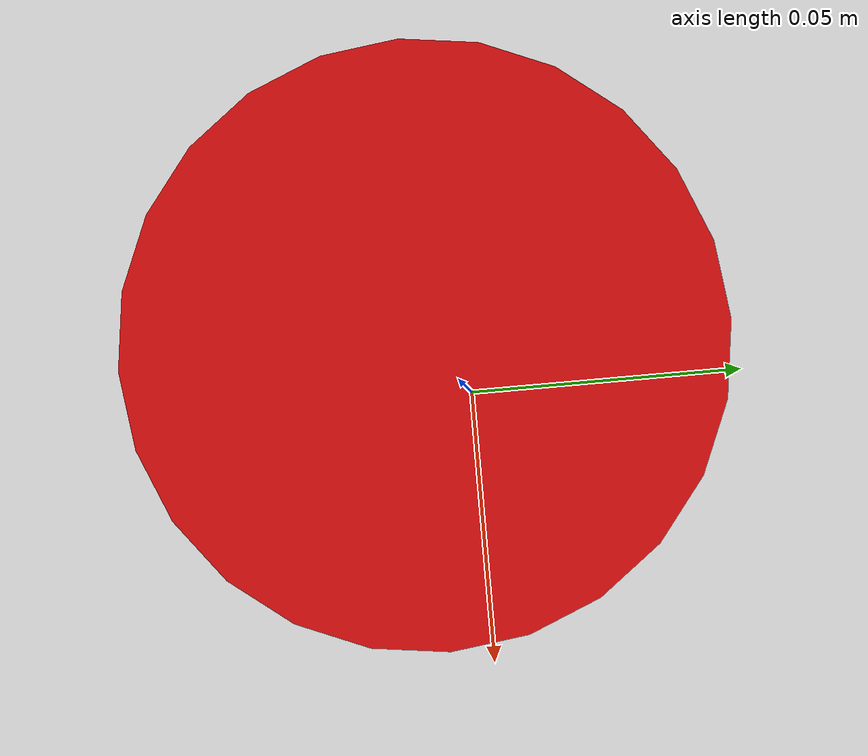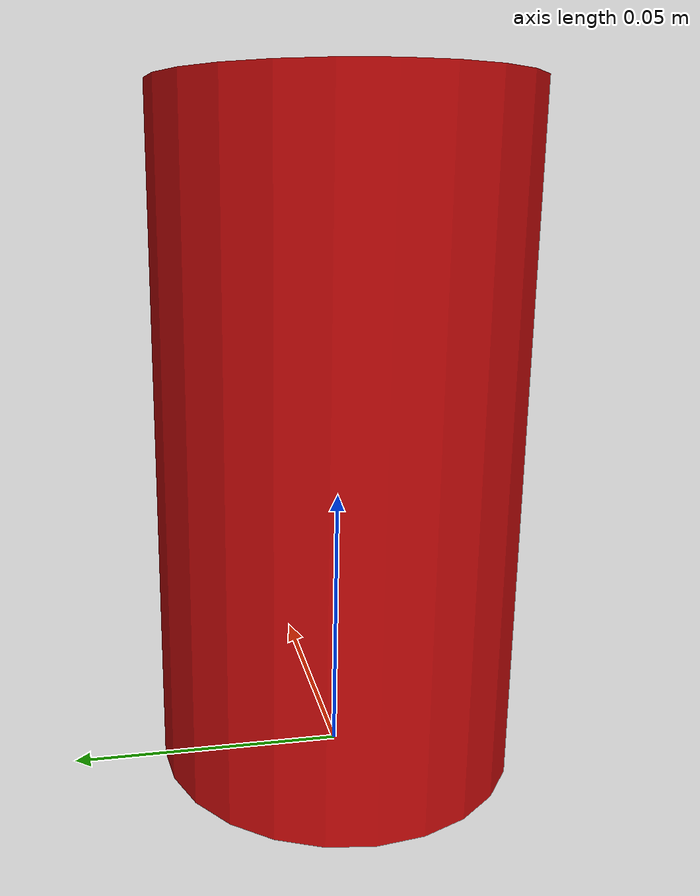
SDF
<?xml version="1.0" encoding="UTF-8"?>
<sdf version="1.9">
  <model name="red_can">
    <static>true</static>
    <link name="link">
      <pose>0 0 0.061 0 0 0</pose>
      <collision name="collision">
        <geometry>
          <cylinder>
            <radius>0.033</radius>
            <length>0.122</length>
          </cylinder>
        </geometry>
      </collision>
      <visual name="visual">
        <geometry>
          <cylinder>
            <radius>0.033</radius>
            <length>0.122</length>
          </cylinder>
        </geometry>
        <material>
          <!-- Saturated red — chosen to be a clean target for both the
               YOLO "bottle" placeholder detector and the HSV red-mask
               filter in swarm_target_detection. -->
          <ambient>0.8 0.02 0.02 1</ambient>
          <diffuse>0.85 0.05 0.05 1</diffuse>
          <specular>0.3 0.3 0.3 1</specular>
        </material>
      </visual>
    </link>
  </model>
</sdf>
